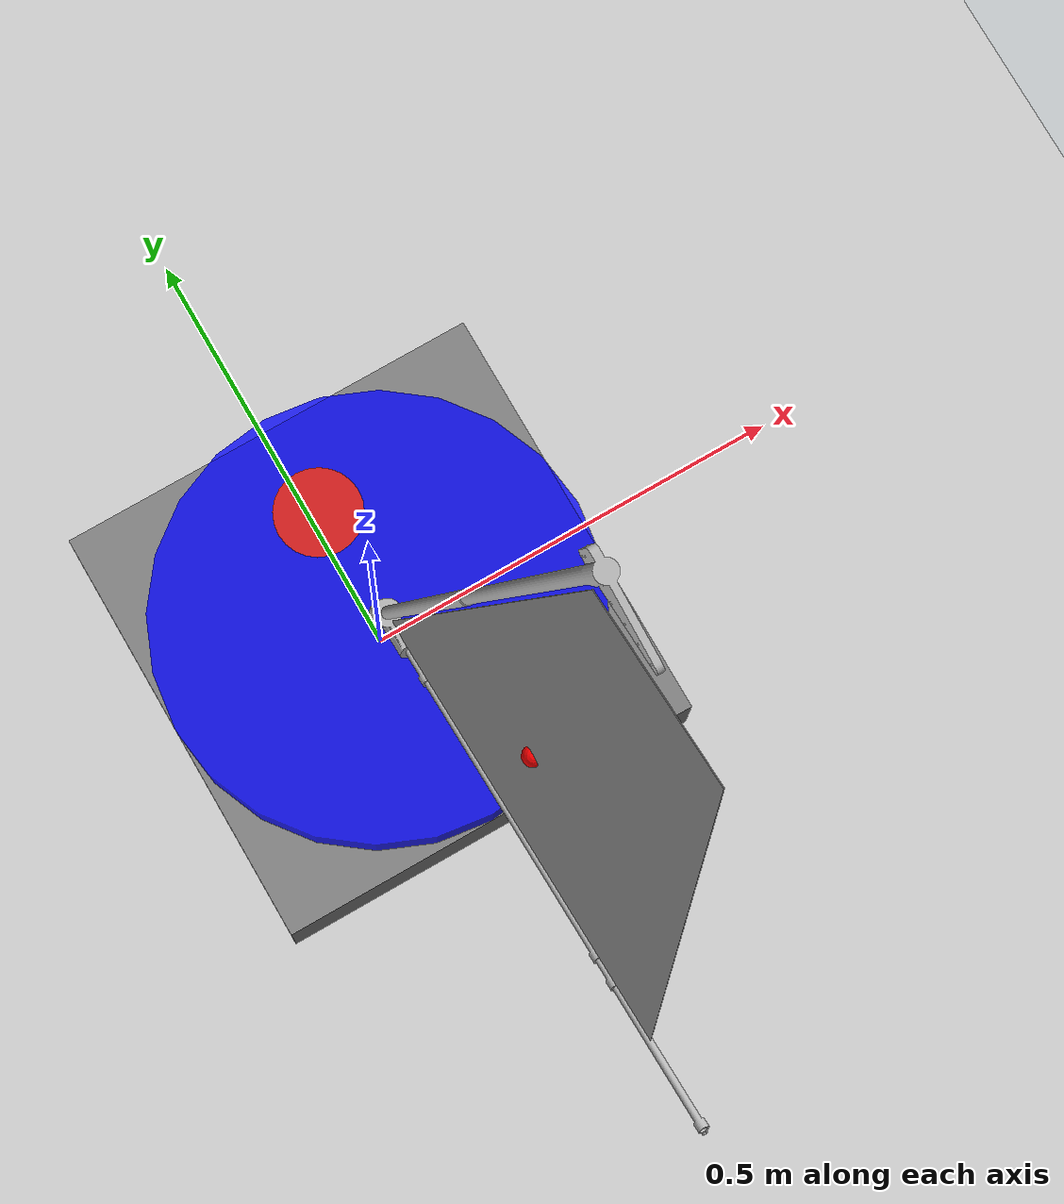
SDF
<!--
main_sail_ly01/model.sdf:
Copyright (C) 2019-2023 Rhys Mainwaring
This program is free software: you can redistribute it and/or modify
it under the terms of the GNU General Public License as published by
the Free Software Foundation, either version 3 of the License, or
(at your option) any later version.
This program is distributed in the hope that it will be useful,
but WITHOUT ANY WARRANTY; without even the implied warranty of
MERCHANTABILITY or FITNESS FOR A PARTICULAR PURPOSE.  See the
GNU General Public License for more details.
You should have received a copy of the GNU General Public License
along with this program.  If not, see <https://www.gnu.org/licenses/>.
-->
<?xml version="1.0" ?>
<sdf version="1.6">
  <world name="test">
    <physics name="1ms" type="ignored">
      <max_step_size>0.001</max_step_size>
      <real_time_factor>1</real_time_factor>
    </physics>

    <plugin filename="gz-sim-physics-system"
        name="gz::sim::systems::Physics">
    </plugin>
    <plugin filename="gz-sim-sensors-system"
        name="gz::sim::systems::Sensors">
      <render_engine>ogre2</render_engine>
      <background_color>0.8 0.8 0.8</background_color>
    </plugin>
    <plugin filename="gz-sim-scene-broadcaster-system"
        name="gz::sim::systems::SceneBroadcaster">
    </plugin>
    <plugin filename="gz-sim-user-commands-system"
        name="gz::sim::systems::UserCommands">
    </plugin>
    <plugin filename="gz-sim-imu-system"
        name="gz::sim::systems::Imu">
    </plugin>
    <plugin filename="asv_sim2-anemometer-system"
      name="gz::sim::systems::Anemometer">
    </plugin>

    <scene>
      <ambient>1.0 1.0 1.0</ambient>
      <background>0.8 0.8 0.8</background>
      <sky></sky>
    </scene>

    <spherical_coordinates>
      <latitude_deg>51.56991349023042</latitude_deg>
      <longitude_deg>-4.033693921107272</longitude_deg>
      <elevation>10.0</elevation>
      <heading_deg>0</heading_deg>
      <surface_model>EARTH_WGS84</surface_model>
    </spherical_coordinates>

    <light type="directional" name="sun">
      <cast_shadows>true</cast_shadows>
      <pose>0 0 10 0 0 0</pose>
      <diffuse>0.8 0.8 0.8 1</diffuse>
      <specular>0.6 0.6 0.6 1</specular>
      <direction>-0.5 0.1 -0.9</direction>
    </light>

    <!-- Wind: 10 m/s from the north (ENU) -->
    <wind>
      <linear_velocity>0 -10 0</linear_velocity>
    </wind>

    <model name="ground_plane">
      <static>true</static>
      <link name="link">
        <collision name="collision">
          <geometry>
            <plane>
              <normal>0 0 1</normal>
              <size>100 100</size>
            </plane>
          </geometry>
        </collision>
        <visual name="visual">
          <geometry>
            <plane>
              <normal>0 0 1</normal>
              <size>100 100</size>
            </plane>
          </geometry>
          <material>
            <ambient>0.8 0.8 0.8 1</ambient>
            <diffuse>0.8 0.8 0.8 1</diffuse>
            <specular>0.8 0.8 0.8 1</specular>
          </material>
        </visual>
      </link>
    </model>

    <model name="main_sail_test">
      <pose>0 0 0.05 0 0 1.57079632</pose>

      <plugin filename="gz-sim-joint-state-publisher-system"
        name="gz::sim::systems::JointStatePublisher">
      </plugin>

      <plugin filename="gz-sim-joint-position-controller-system"
          name="gz::sim::systems::JointPositionController">
        <joint_name>turntable_joint</joint_name>
        <topic>/turntable_joint/cmd_pos</topic>
        <initial_position>0.0</initial_position>
        <p_gain>100</p_gain>
        <i_gain>0.0</i_gain>
        <d_gain>30</d_gain>
        <i_max>1</i_max>
        <i_min>-1</i_min>
        <cmd_max>1000</cmd_max>
        <cmd_min>-1000</cmd_min>
      </plugin>

      <plugin filename="asv_sim2-sail-position-controller-system"
          name="gz::sim::systems::SailPositionController">
        <joint_name>main_sail_joint</joint_name>
        <topic>/main_sail_joint/cmd_pos</topic>
        <initial_position>0.0</initial_position>
        <p_gain>100</p_gain>
        <i_gain>0</i_gain>
        <d_gain>30</d_gain>
        <i_max>1</i_max>
        <i_min>-1</i_min>
        <cmd_max>100</cmd_max>
        <cmd_min>-100</cmd_min>
      </plugin>

      <link name="base_link">
        <inertial>
          <mass>1000</mass>
          <inertia>
            <ixx>21.66</ixx>
            <ixy>0</ixy>
            <iyy>21.66</iyy>
            <iyz>0</iyz>
            <izz>41.66</izz>
          </inertia>
        </inertial>
        <collision name="collision">
          <geometry>
            <box>
              <size>0.5 0.5 0.1</size>
            </box>
          </geometry>
        </collision>
        <visual name="visual">
          <geometry>
            <box>
              <size>0.5 0.5 0.1</size>
            </box>
          </geometry>
          <material>
            <ambient>0.5 0.5 0.5 1.0</ambient>
            <diffuse>0.5 0.5 0.5 1.0</diffuse>
            <specular>0.1 0.1 0.1 1.0</specular>
          </material>
        </visual>
      </link>

      <link name="turntable_link">
        <pose>0 0 0.075 0 0 0</pose>
        <inertial>
          <mass>100</mass>
          <inertia>
            <ixx>1.5833</ixx>
            <ixy>0</ixy>
            <iyy>1.5833</iyy>
            <iyz>0</iyz>
            <izz>3.125</izz>
          </inertia>
        </inertial>
        <collision name="collision">
          <geometry>
            <cylinder>
              <radius>0.25</radius>
              <length>0.05</length>
            </cylinder>
          </geometry>
        </collision>
        <visual name="visual">
          <geometry>
            <cylinder>
              <radius>0.25</radius>
              <length>0.05</length>
            </cylinder>
          </geometry>
          <material>
            <ambient>0 0 1 0.8</ambient>
            <diffuse>0 0 1 0.8</diffuse>
            <specular>0.1 0.1 0.1 1</specular>
          </material>
        </visual>
        <visual name="direction_visual">
          <pose>0.13 0 0.0255 0 0 0</pose>
          <geometry>
            <cylinder>
              <radius>0.05</radius>
              <length>0.001</length>
            </cylinder>
          </geometry>
          <material>
            <ambient>1 0 0 0.7</ambient>
            <diffuse>1 0 0 0.7</diffuse>
            <specular>0.1 0.1 0.1 0.7</specular>
          </material>
        </visual>
        <sensor name="imu_sensor" type="imu">
          <pose>0 0 0 3.141593 0 0</pose>
          <always_on>1</always_on>
          <update_rate>1000</update_rate>
          <visualize>1</visualize>
        </sensor>
        <sensor name="anemometer" type="custom" gz:type="anemometer">
          <always_on>1</always_on>
          <update_rate>30</update_rate>
          <gz:anemometer>
            <noise type="gaussian">
              <mean>0</mean>
              <stddev>0</stddev>
            </noise>
          </gz:anemometer>
        </sensor>
      </link>

      <joint type="revolute" name="turntable_joint">
        <child>turntable_link</child>
        <parent>base_link</parent>
        <axis>
          <xyz>0 0 1</xyz>
          <dynamics>
            <damping>0.01</damping>
          </dynamics>
          <limit>
            <lower>-3.1415926</lower>
            <upper>3.1415926</upper>
          </limit>
        </axis>
      </joint>

      <include>
        <pose>0 0 0.1 0 -0.20943951 0</pose>
        <uri>model://main_sail_ly01</uri>
        <name>main_sail</name>
      </include>

      <joint type="revolute" name="main_sail_joint">
        <pose relative_to="main_sail::main_sail_link">0 0 0 0 0 0</pose>
        <child>main_sail::main_sail_link</child>
        <parent>turntable_link</parent>
        <axis>
          <xyz>0 0 1</xyz>
          <dynamics>
            <damping>0.01</damping>
          </dynamics>
          <limit>
            <lower>-1.396263402</lower>
            <upper>1.396263402</upper>
          </limit>
        </axis>
      </joint>

      <plugin name="ArduPilotPlugin"
          filename="ArduPilotPlugin">
        <fdm_addr>127.0.0.1</fdm_addr>
        <fdm_port_in>9002</fdm_port_in>
        <connectionTimeoutMaxCount>5</connectionTimeoutMaxCount>
        <lock_step>1</lock_step>
        <gazeboXYZToNED>0 0 0 3.141593 0 1.57079632</gazeboXYZToNED>
        <modelXYZToAirplaneXForwardZDown>0 0 0 3.141593 0 0</modelXYZToAirplaneXForwardZDown>
        <imuName>turntable_link::imu_sensor</imuName>
        <anemometer>turntable_link::anemometer</anemometer>

        <!-- Control / channels -->
        <!--
          SERVO4_FUNCTION 89 (MainSail)
          SERVO4_MIN 1000
          SERVO4_MAX 2000

          input command in [0, 1]
          desired sail angle in [5, 50] deg
        -->
        <control channel="3">
          <jointName>main_sail_joint</jointName>
          <useForce>1</useForce>
          <multiplier>1.39626</multiplier>
          <offset>0</offset>
          <servo_min>1000</servo_min>
          <servo_max>2000</servo_max>
          <type>COMMAND</type>
          <cmd_topic>/main_sail_joint/cmd_pos</cmd_topic>
        </control>

      </plugin>
    </model>

  </world>
</sdf>

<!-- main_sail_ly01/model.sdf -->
<sdf version="1.6">
  <model name="main_sail_ly01">

    <!-- Plugins -->
    <plugin name="gz::sim::systems::SailLiftDrag"
        filename="asv_sim2-sail-lift-drag-system">
      <a0>0.0</a0>
      <cla>6.2832</cla>
      <alpha_stall>0.1592</alpha_stall>
      <cla_stall>-0.7083</cla_stall>
      <cda>0.63662</cda>
      <area>0.4858</area>
      <fluid_density>1.2</fluid_density>
      <forward>1 0 0</forward>
      <upward>0 1 0</upward>
      <cp>-0.15 0.0 0.75</cp>
      <link_name>main_sail_link</link_name>
      <radial_symmetry>true</radial_symmetry>
      <topic>lift_drag</topic>
    </plugin>

    <!-- Main sail-->
    <link name="main_sail_link">
      <inertial>
        <pose>-0.15 0.0 0.75 0 0 0</pose>
        <mass>0.5</mass>
        <inertia>
          <ixx>0.081670833</ixx>
          <ixy>0</ixy>
          <iyy>0.088333333</iyy>
          <iyz>0</iyz>
          <izz>0.006670833</izz>
        </inertia>
      </inertial>
      <collision name="sail_collision">
        <pose>-0.2 0 0.9 0 0 0</pose>
        <geometry>
          <box>
            <size>0.4 0.01 1.4</size>
          </box>
        </geometry>
      </collision>
      <visual name="rig_visual">
        <geometry>
          <mesh>
            <uri>model://main_sail_ly01/meshes/land_yacht_rig.dae</uri>
          </mesh>
        </geometry>
      </visual>
      <visual name="sail_visual">
        <pose>-0.01 0 0.12 0 0.20943951 0</pose>
        <geometry>
          <mesh>
            <uri>model://main_sail_ly01/meshes/land_yacht_flat_sail.stl</uri>
          </mesh>
        </geometry>
        <material>
          <ambient>0.5 0.5 0.5 0.9</ambient>
          <diffuse>0.5 0.5 0.5 0.9</diffuse>
          <specular>0.1 0.1 0.1 0.9</specular>
        </material>
      </visual>
      <visual name="cp_visual">
        <pose>-0.15 0.0 0.75 0 0 0</pose>
        <geometry>
          <sphere>
            <radius>0.01</radius>
          </sphere>
        </geometry>
        <material>
          <ambient>1.0 0.0 0.0 1.0</ambient>
          <diffuse>1.0 0.0 0.0 1.0</diffuse>
          <specular>0.1 0.1 0.1 1.0</specular>
        </material>
      </visual>
    </link>

  </model>
</sdf>
